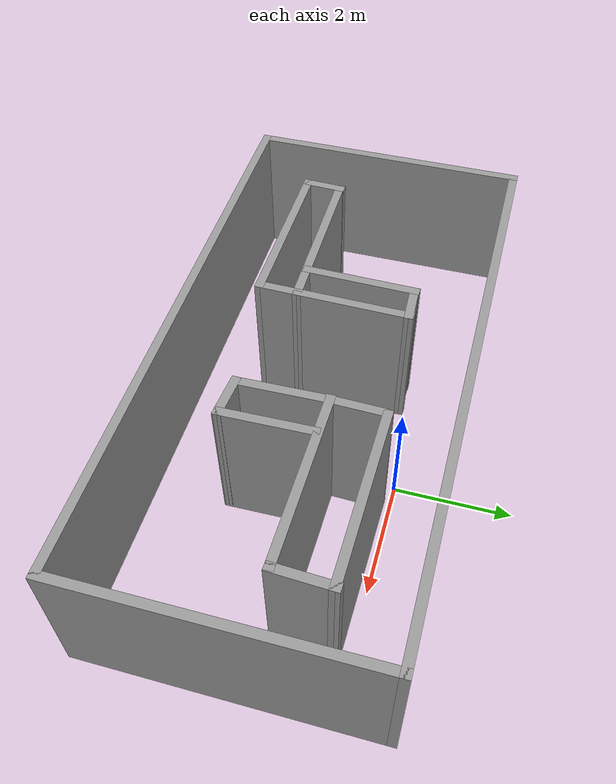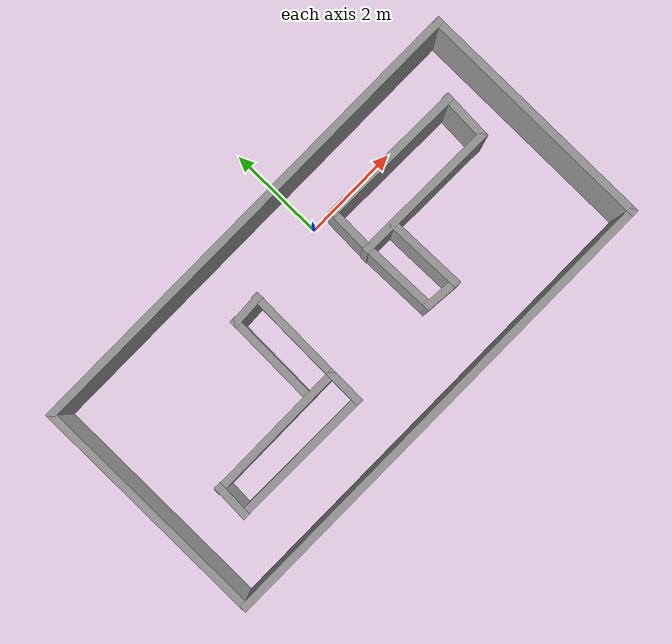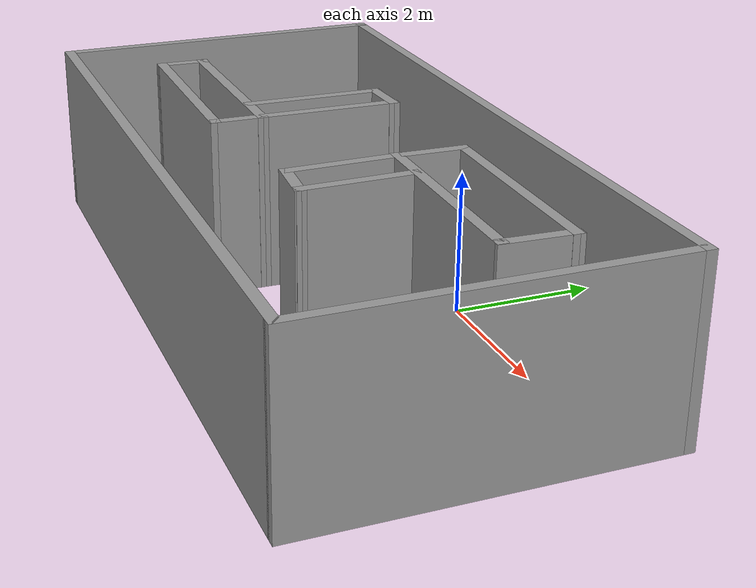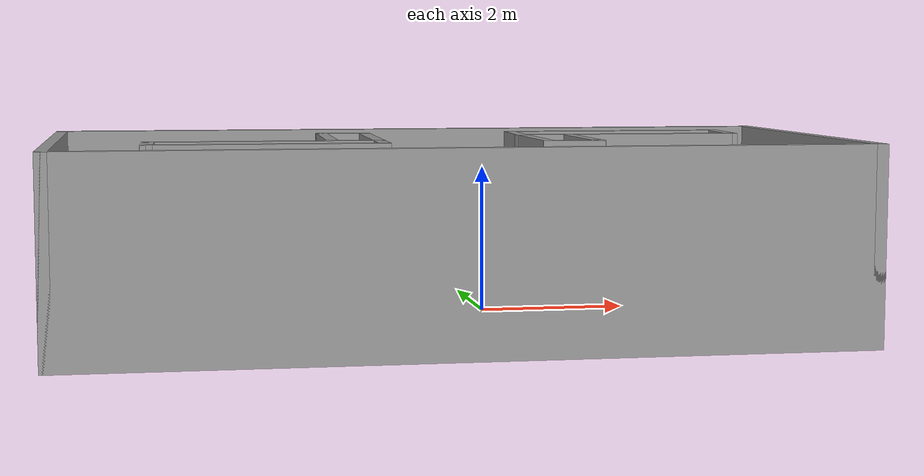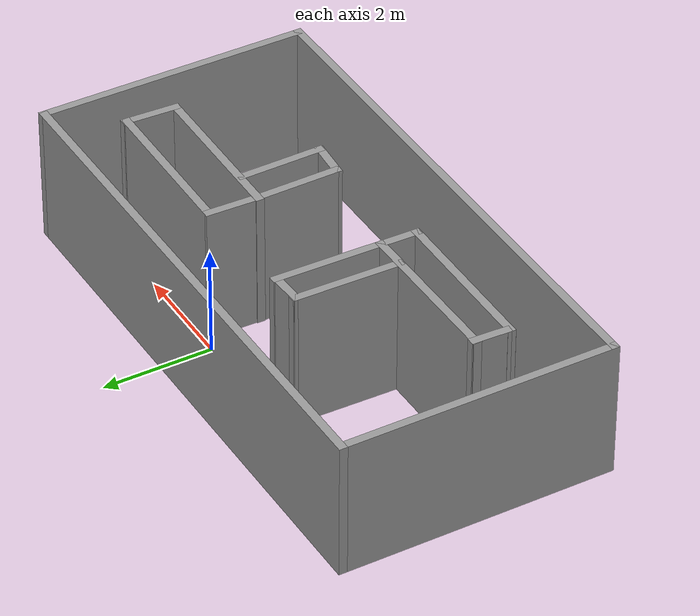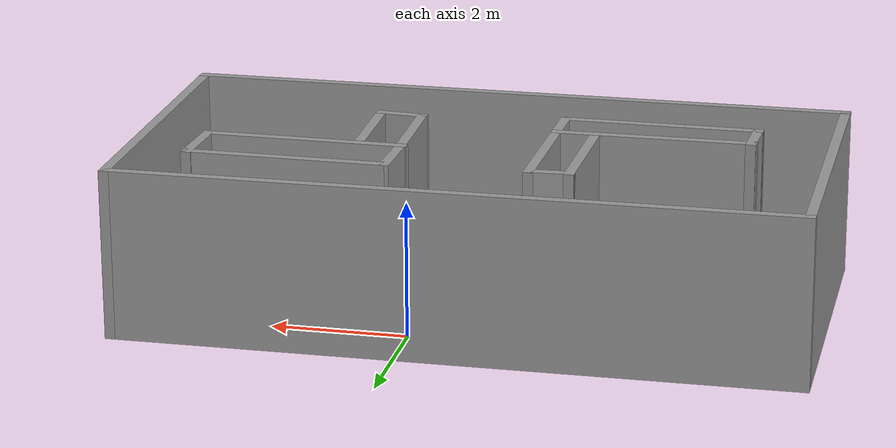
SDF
<?xml version='1.0'?>
<sdf version='1.6'>
  <model name='Untitled'>
    <pose frame=''>-0.81465 -1.54832 0 0 -0 0</pose>
    <link name='Wall_0'>
      <collision name='Wall_0_Collision'>
        <geometry>
          <box>
            <size>10 0.15 2.5</size>
          </box>
        </geometry>
        <pose frame=''>0 0 1.25 0 -0 0</pose>
      </collision>
      <visual name='Wall_0_Visual'>
        <pose frame=''>0 0 1.25 0 -0 0</pose>
        <geometry>
          <box>
            <size>10 0.15 2.5</size>
          </box>
        </geometry>
        <material>
          <script>
            <uri>file://media/materials/scripts/gazebo.material</uri>
            <name>Gazebo/Grey</name>
          </script>
          <ambient>1 1 1 1</ambient>
        </material>
        <meta>
          <layer>0</layer>
        </meta>
      </visual>
      <pose frame=''>-0 -2.425 0 0 -0 0</pose>
    </link>
    <link name='Wall_1'>
      <collision name='Wall_1_Collision'>
        <geometry>
          <box>
            <size>5 0.15 2.5</size>
          </box>
        </geometry>
        <pose frame=''>0 0 1.25 0 -0 0</pose>
      </collision>
      <visual name='Wall_1_Visual'>
        <pose frame=''>0 0 1.25 0 -0 0</pose>
        <geometry>
          <box>
            <size>5 0.15 2.5</size>
          </box>
        </geometry>
        <material>
          <script>
            <uri>file://media/materials/scripts/gazebo.material</uri>
            <name>Gazebo/Grey</name>
          </script>
          <ambient>1 1 1 1</ambient>
        </material>
        <meta>
          <layer>0</layer>
        </meta>
      </visual>
      <pose frame=''>4.925 -0 0 0 -0 1.5708</pose>
    </link>
    <link name='Wall_10'>
      <collision name='Wall_10_Collision'>
        <geometry>
          <box>
            <size>1.04134 0.15 2.5</size>
          </box>
        </geometry>
        <pose frame=''>0 0 1.25 0 -0 0</pose>
      </collision>
      <visual name='Wall_10_Visual'>
        <pose frame=''>0 0 1.25 0 -0 0</pose>
        <geometry>
          <box>
            <size>1.04134 0.15 2.5</size>
          </box>
        </geometry>
        <material>
          <script>
            <uri>file://media/materials/scripts/gazebo.material</uri>
            <name>Gazebo/Grey</name>
          </script>
          <ambient>1 1 1 1</ambient>
        </material>
        <meta>
          <layer>0</layer>
        </meta>
      </visual>
      <pose frame=''>1.1585 0.9251 0 0 -0 -1.60048</pose>
    </link>
    <link name='Wall_11'>
      <collision name='Wall_11_Collision'>
        <geometry>
          <box>
            <size>3.02672 0.15 2.5</size>
          </box>
        </geometry>
        <pose frame=''>0 0 1.25 0 -0 0</pose>
      </collision>
      <visual name='Wall_11_Visual'>
        <pose frame=''>0 0 1.25 0 -0 0</pose>
        <geometry>
          <box>
            <size>3.02672 0.15 2.5</size>
          </box>
        </geometry>
        <material>
          <script>
            <uri>file://media/materials/scripts/gazebo.material</uri>
            <name>Gazebo/Grey</name>
          </script>
          <ambient>1 1 1 1</ambient>
        </material>
        <meta>
          <layer>0</layer>
        </meta>
      </visual>
      <pose frame=''>2.57028 0.459787 0 0 -0 -0.013792</pose>
    </link>
    <link name='Wall_12'>
      <collision name='Wall_12_Collision'>
        <geometry>
          <box>
            <size>1.05505 0.15 2.5</size>
          </box>
        </geometry>
        <pose frame=''>0 0 1.25 0 -0 0</pose>
      </collision>
      <visual name='Wall_12_Visual'>
        <pose frame=''>0 0 1.25 0 -0 0</pose>
        <geometry>
          <box>
            <size>1.05505 0.15 2.5</size>
          </box>
        </geometry>
        <material>
          <script>
            <uri>file://media/materials/scripts/gazebo.material</uri>
            <name>Gazebo/Grey</name>
          </script>
          <ambient>1 1 1 1</ambient>
        </material>
        <meta>
          <layer>0</layer>
        </meta>
      </visual>
      <pose frame=''>4.04156 0.892037 0 0 -0 1.52694</pose>
    </link>
    <link name='Wall_13'>
      <collision name='Wall_13_Collision'>
        <geometry>
          <box>
            <size>3.02657 0.15 2.5</size>
          </box>
        </geometry>
        <pose frame=''>0 0 1.25 0 -0 0</pose>
      </collision>
      <visual name='Wall_13_Visual'>
        <pose frame=''>0 0 1.25 0 -0 0</pose>
        <geometry>
          <box>
            <size>3.02657 0.15 2.5</size>
          </box>
        </geometry>
        <material>
          <script>
            <uri>file://media/materials/scripts/gazebo.material</uri>
            <name>Gazebo/Grey</name>
          </script>
          <ambient>1 1 1 1</ambient>
        </material>
        <meta>
          <layer>0</layer>
        </meta>
      </visual>
      <pose frame=''>2.62317 1.35074 0 0 -0 3.1278</pose>
    </link>
    <link name='Wall_15'>
      <collision name='Wall_15_Collision'>
        <geometry>
          <box>
            <size>2.01365 0.15 2.5</size>
          </box>
        </geometry>
        <pose frame=''>0 0 1.25 0 -0 0</pose>
      </collision>
      <visual name='Wall_15_Visual'>
        <pose frame=''>0 0 1.25 0 -0 0</pose>
        <geometry>
          <box>
            <size>2.01365 0.15 2.5</size>
          </box>
        </geometry>
        <material>
          <script>
            <uri>file://media/materials/scripts/gazebo.material</uri>
            <name>Gazebo/Grey</name>
          </script>
          <ambient>1 1 1 1</ambient>
        </material>
        <meta>
          <layer>0</layer>
        </meta>
      </visual>
      <pose frame=''>-1.46666 0.318437 0 0 -0 1.54951</pose>
    </link>
    <link name='Wall_16'>
      <collision name='Wall_16_Collision'>
        <geometry>
          <box>
            <size>0.72416 0.15 2.5</size>
          </box>
        </geometry>
        <pose frame=''>0 0 1.25 0 -0 0</pose>
      </collision>
      <visual name='Wall_16_Visual'>
        <pose frame=''>0 0 1.25 0 -0 0</pose>
        <geometry>
          <box>
            <size>0.72416 0.15 2.5</size>
          </box>
        </geometry>
        <material>
          <script>
            <uri>file://media/materials/scripts/gazebo.material</uri>
            <name>Gazebo/Grey</name>
          </script>
          <ambient>1 1 1 1</ambient>
        </material>
        <meta>
          <layer>0</layer>
        </meta>
      </visual>
      <pose frame=''>-1.16005 1.25005 0 0 -0 0.046084</pose>
    </link>
    <link name='Wall_17'>
      <collision name='Wall_17_Collision'>
        <geometry>
          <box>
            <size>2.04006 0.15 2.5</size>
          </box>
        </geometry>
        <pose frame=''>0 0 1.25 0 -0 0</pose>
      </collision>
      <visual name='Wall_17_Visual'>
        <pose frame=''>0 0 1.25 0 -0 0</pose>
        <geometry>
          <box>
            <size>2.04006 0.15 2.5</size>
          </box>
        </geometry>
        <material>
          <script>
            <uri>file://media/materials/scripts/gazebo.material</uri>
            <name>Gazebo/Grey</name>
          </script>
          <ambient>1 1 1 1</ambient>
        </material>
        <meta>
          <layer>0</layer>
        </meta>
      </visual>
      <pose frame=''>-0.892238 0.331662 0 0 -0 -1.59086</pose>
    </link>
    <link name='Wall_19'>
      <collision name='Wall_19_Collision'>
        <geometry>
          <box>
            <size>1.61799 0.15 2.5</size>
          </box>
        </geometry>
        <pose frame=''>0 0 1.25 0 -0 0</pose>
      </collision>
      <visual name='Wall_19_Visual'>
        <pose frame=''>0 0 1.25 0 -0 0</pose>
        <geometry>
          <box>
            <size>1.61799 0.15 2.5</size>
          </box>
        </geometry>
        <material>
          <script>
            <uri>file://media/materials/scripts/gazebo.material</uri>
            <name>Gazebo/Grey</name>
          </script>
          <ambient>1 1 1 1</ambient>
        </material>
        <meta>
          <layer>0</layer>
        </meta>
      </visual>
      <pose frame=''>1.1585 -0.25425 0 0 -0 -1.55278</pose>
    </link>
    <link name='Wall_2'>
      <collision name='Wall_2_Collision'>
        <geometry>
          <box>
            <size>10 0.15 2.5</size>
          </box>
        </geometry>
        <pose frame=''>0 0 1.25 0 -0 0</pose>
      </collision>
      <visual name='Wall_2_Visual'>
        <pose frame=''>0 0 1.25 0 -0 0</pose>
        <geometry>
          <box>
            <size>10 0.15 2.5</size>
          </box>
        </geometry>
        <material>
          <script>
            <uri>file://media/materials/scripts/gazebo.material</uri>
            <name>Gazebo/Grey</name>
          </script>
          <ambient>1 1 1 1</ambient>
        </material>
        <meta>
          <layer>0</layer>
        </meta>
      </visual>
      <pose frame=''>-0 2.425 0 0 -0 3.14159</pose>
    </link>
    <link name='Wall_20'>
      <collision name='Wall_20_Collision'>
        <geometry>
          <box>
            <size>0.777705 0.15 2.5</size>
          </box>
        </geometry>
        <pose frame=''>0 0 1.25 0 -0 0</pose>
      </collision>
      <visual name='Wall_20_Visual'>
        <pose frame=''>0 0 1.25 0 -0 0</pose>
        <geometry>
          <box>
            <size>0.777705 0.15 2.5</size>
          </box>
        </geometry>
        <material>
          <script>
            <uri>file://media/materials/scripts/gazebo.material</uri>
            <name>Gazebo/Grey</name>
          </script>
          <ambient>1 1 1 1</ambient>
        </material>
        <meta>
          <layer>0</layer>
        </meta>
      </visual>
      <pose frame=''>1.48495 -1.0278 0 0 -0 -0.084244</pose>
    </link>
    <link name='Wall_21'>
      <collision name='Wall_21_Collision'>
        <geometry>
          <box>
            <size>1.61799 0.15 2.5</size>
          </box>
        </geometry>
        <pose frame=''>0 0 1.25 0 -0 0</pose>
      </collision>
      <visual name='Wall_21_Visual'>
        <pose frame=''>0 0 1.25 0 -0 0</pose>
        <geometry>
          <box>
            <size>1.61799 0.15 2.5</size>
          </box>
        </geometry>
        <material>
          <script>
            <uri>file://media/materials/scripts/gazebo.material</uri>
            <name>Gazebo/Grey</name>
          </script>
          <ambient>1 1 1 1</ambient>
        </material>
        <meta>
          <layer>0</layer>
        </meta>
      </visual>
      <pose frame=''>1.78495 -0.30715 0 0 -0 1.58882</pose>
    </link>
    <link name='Wall_3'>
      <collision name='Wall_3_Collision'>
        <geometry>
          <box>
            <size>5 0.15 2.5</size>
          </box>
        </geometry>
        <pose frame=''>0 0 1.25 0 -0 0</pose>
      </collision>
      <visual name='Wall_3_Visual'>
        <pose frame=''>0 0 1.25 0 -0 0</pose>
        <geometry>
          <box>
            <size>5 0.15 2.5</size>
          </box>
        </geometry>
        <material>
          <script>
            <uri>file://media/materials/scripts/gazebo.material</uri>
            <name>Gazebo/Grey</name>
          </script>
          <ambient>1 1 1 1</ambient>
        </material>
        <meta>
          <layer>0</layer>
        </meta>
      </visual>
      <pose frame=''>-4.925 -0 0 0 -0 -1.5708</pose>
    </link>
    <link name='Wall_5'>
      <collision name='Wall_5_Collision'>
        <geometry>
          <box>
            <size>0.777008 0.15 2.5</size>
          </box>
        </geometry>
        <pose frame=''>0 0 1.25 0 -0 0</pose>
      </collision>
      <visual name='Wall_5_Visual'>
        <pose frame=''>0 0 1.25 0 -0 0</pose>
        <geometry>
          <box>
            <size>0.777008 0.15 2.5</size>
          </box>
        </geometry>
        <material>
          <script>
            <uri>file://media/materials/scripts/gazebo.material</uri>
            <name>Gazebo/Grey</name>
          </script>
          <ambient>1 1 1 1</ambient>
        </material>
        <meta>
          <layer>0</layer>
        </meta>
      </visual>
      <pose frame=''>-3.7612 -0.939625 0 0 -0 -1.61299</pose>
    </link>
    <link name='Wall_6'>
      <collision name='Wall_6_Collision'>
        <geometry>
          <box>
            <size>3 0.15 2.5</size>
          </box>
        </geometry>
        <pose frame=''>0 0 1.25 0 -0 0</pose>
      </collision>
      <visual name='Wall_6_Visual'>
        <pose frame=''>0 0 1.25 0 -0 0</pose>
        <geometry>
          <box>
            <size>3 0.15 2.5</size>
          </box>
        </geometry>
        <material>
          <script>
            <uri>file://media/materials/scripts/gazebo.material</uri>
            <name>Gazebo/Grey</name>
          </script>
          <ambient>1 1 1 1</ambient>
        </material>
        <meta>
          <layer>0</layer>
        </meta>
      </visual>
      <pose frame=''>-2.34943 -1.26608 0 0 -0 -0.00928</pose>
    </link>
    <link name='Wall_7'>
      <collision name='Wall_7_Collision'>
        <geometry>
          <box>
            <size>0.789812 0.15 2.5</size>
          </box>
        </geometry>
        <pose frame=''>0 0 1.25 0 -0 0</pose>
      </collision>
      <visual name='Wall_7_Visual'>
        <pose frame=''>0 0 1.25 0 -0 0</pose>
        <geometry>
          <box>
            <size>0.789812 0.15 2.5</size>
          </box>
        </geometry>
        <material>
          <script>
            <uri>file://media/materials/scripts/gazebo.material</uri>
            <name>Gazebo/Grey</name>
          </script>
          <ambient>1 1 1 1</ambient>
        </material>
        <meta>
          <layer>0</layer>
        </meta>
      </visual>
      <pose frame=''>-0.917813 -0.946238 0 0 -0 1.55012</pose>
    </link>
    <link name='Wall_8'>
      <collision name='Wall_8_Collision'>
        <geometry>
          <box>
            <size>3.00012 0.15 2.5</size>
          </box>
        </geometry>
        <pose frame=''>0 0 1.25 0 -0 0</pose>
      </collision>
      <visual name='Wall_8_Visual'>
        <pose frame=''>0 0 1.25 0 -0 0</pose>
        <geometry>
          <box>
            <size>3.00012 0.15 2.5</size>
          </box>
        </geometry>
        <material>
          <script>
            <uri>file://media/materials/scripts/gazebo.material</uri>
            <name>Gazebo/Grey</name>
          </script>
          <ambient>1 1 1 1</ambient>
        </material>
        <meta>
          <layer>0</layer>
        </meta>
      </visual>
      <pose frame=''>-2.3362 -0.633013 0 0 -0 -3.13695</pose>
    </link>
    <static>1</static>
  </model>
</sdf>
